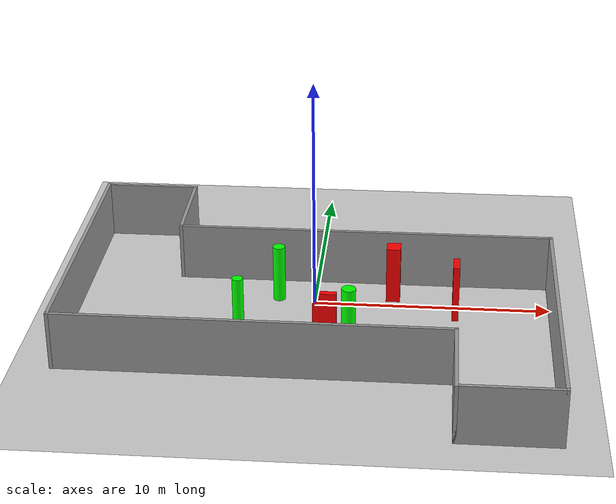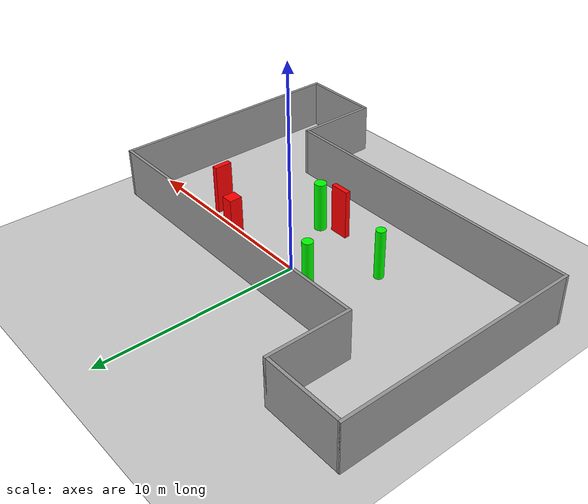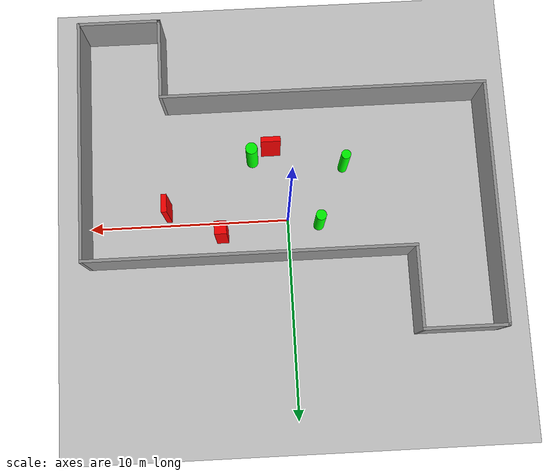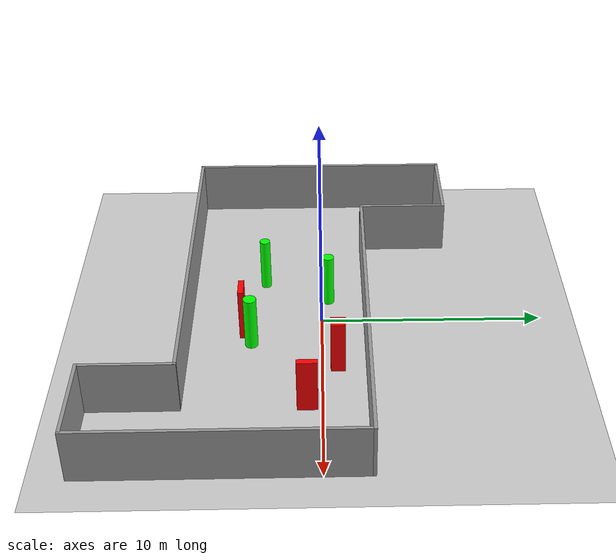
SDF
<sdf version="1.7">
 <world name="default">
  <light name="sun" type="directional">
   <pose>0 0 10 0 -0 0</pose>
   <diffuse>0.8 0.8 0.8 1</diffuse>
   <specular>0.2 0.2 0.2 1</specular>
   <attenuation>
    <range>1000</range>
    <constant>0.9</constant>
    <linear>0.01</linear>
    <quadratic>0.001</quadratic>
   </attenuation>
   <direction>-0.5 0.1 -0.9</direction>
   <spot><inner_angle>0</inner_angle><outer_angle>0</outer_angle><falloff>0</falloff></spot>
  </light>
  <model name="ground_plane">
   <static>1</static>
   <link name="link">
    <collision name="collision">
     <geometry><plane><normal>0 0 1</normal><size>100 100</size></plane></geometry>
     <surface>
      <contact><collide_bitmask>65535</collide_bitmask></contact>
      <friction><ode><mu>100</mu><mu2>50</mu2></ode></friction>
     </surface>
    </collision>
    <visual name="visual">
     <cast_shadows>0</cast_shadows>
     <geometry><plane><normal>0 0 1</normal><size>100 100</size></plane></geometry>
     <material>
      <script><uri>file://media/materials/scripts/gazebo.material</uri><name>Gazebo/Grey</name></script>
     </material>
    </visual>
   </link>
  </model>
  <gravity>0 0 -9.8</gravity>
  <magnetic_field>6e-06 2.3e-05 -4.2e-05</magnetic_field>
  <atmosphere type="adiabatic"/>
  <physics type="ode">
   <max_step_size>0.001</max_step_size>
   <real_time_factor>1</real_time_factor>
   <real_time_update_rate>1000</real_time_update_rate>
  </physics>
  <scene><ambient>0.4 0.4 0.4 1</ambient><background>0.7 0.7 0.7 1</background><shadows>1</shadows></scene>
  <spherical_coordinates>
   <surface_model>EARTH_WGS84</surface_model>
   <latitude_deg>0</latitude_deg>
   <longitude_deg>0</longitude_deg>
   <elevation>0</elevation>
   <heading_deg>0</heading_deg>
  </spherical_coordinates>
  <model name="my_base_walls">
   <link name="Wall_13">
    <collision name="Wall_13_Collision">
     <geometry><box><size>12.15 0.15 2.5</size></box></geometry>
     <pose>0 0 1.25 0 -0 0</pose>
    </collision>
    <visual name="Wall_13_Visual">
     <pose>0 0 1.25 0 -0 0</pose>
     <geometry><box><size>12.15 0.15 2.5</size></box></geometry>
     <material>
      <script><uri>file://media/materials/scripts/gazebo.material</uri><name>Gazebo/Grey</name></script>
      <ambient>1 1 1 1</ambient>
     </material>
     <meta><layer>0</layer></meta>
    </visual>
    <pose>10 -2 0 0 -0 1.5708</pose>
   </link>
   <link name="Wall_15">
    <collision name="Wall_15_Collision">
     <geometry><box><size>16.15 0.15 2.5</size></box></geometry>
     <pose>0 0 1.25 0 -0 0</pose>
    </collision>
    <visual name="Wall_15_Visual">
     <pose>0 0 1.25 0 -0 0</pose>
     <geometry><box><size>16.15 0.15 2.5</size></box></geometry>
     <material>
      <script><uri>file://media/materials/scripts/gazebo.material</uri><name>Gazebo/Grey</name></script>
      <ambient>1 1 1 1</ambient>
     </material>
     <meta><layer>0</layer></meta>
    </visual>
    <pose>2 4 0 0 -0 3.14159</pose>
   </link>
   <link name="Wall_17">
    <collision name="Wall_17_Collision">
     <geometry><box><size>4.15 0.15 2.5</size></box></geometry>
     <pose>0 0 1.25 0 -0 0</pose>
    </collision>
    <visual name="Wall_17_Visual">
     <pose>0 0 1.25 0 -0 0</pose>
     <geometry><box><size>4.15 0.15 2.5</size></box></geometry>
     <material>
      <script><uri>file://media/materials/scripts/gazebo.material</uri><name>Gazebo/Grey</name></script>
      <ambient>1 1 1 1</ambient>
     </material>
     <meta><layer>0</layer></meta>
    </visual>
    <pose>6 -6 0 0 -0 -1.5708</pose>
   </link>
   <link name="Wall_19">
    <collision name="Wall_19_Collision">
     <geometry><box><size>12.15 0.15 2.5</size></box></geometry>
     <pose>0 0 1.25 0 -0 0</pose>
    </collision>
    <visual name="Wall_19_Visual">
     <pose>0 0 1.25 0 -0 0</pose>
     <geometry><box><size>12.15 0.15 2.5</size></box></geometry>
     <material>
      <script><uri>file://media/materials/scripts/gazebo.material</uri><name>Gazebo/Grey</name></script>
      <ambient>1 1 1 1</ambient>
     </material>
     <meta><layer>0</layer></meta>
    </visual>
    <pose>-10 2 0 0 -0 1.5708</pose>
   </link>
   <link name="Wall_21">
    <collision name="Wall_21_Collision">
     <geometry><box><size>4.15 0.15 2.5</size></box></geometry>
     <pose>0 0 1.25 0 -0 0</pose>
    </collision>
    <visual name="Wall_21_Visual">
     <pose>0 0 1.25 0 -0 0</pose>
     <geometry><box><size>4.15 0.15 2.5</size></box></geometry>
     <material>
      <script><uri>file://media/materials/scripts/gazebo.material</uri><name>Gazebo/Grey</name></script>
      <ambient>1 1 1 1</ambient>
     </material>
     <meta><layer>0</layer></meta>
    </visual>
    <pose>-8 8 0 0 -0 0</pose>
   </link>
   <link name="Wall_23">
    <collision name="Wall_23_Collision">
     <geometry><box><size>4.15 0.15 2.5</size></box></geometry>
     <pose>0 0 1.25 0 -0 0</pose>
    </collision>
    <visual name="Wall_23_Visual">
     <pose>0 0 1.25 0 -0 0</pose>
     <geometry><box><size>4.15 0.15 2.5</size></box></geometry>
     <material>
      <script><uri>file://media/materials/scripts/gazebo.material</uri><name>Gazebo/Grey</name></script>
      <ambient>1 1 1 1</ambient>
     </material>
     <meta><layer>0</layer></meta>
    </visual>
    <pose>-6 6 0 0 -0 -1.5708</pose>
   </link>
   <link name="Wall_25">
    <collision name="Wall_25_Collision">
     <geometry><box><size>4.15 0.15 2.5</size></box></geometry>
     <pose>0 0 1.25 0 -0 0</pose>
    </collision>
    <visual name="Wall_25_Visual">
     <pose>0 0 1.25 0 -0 0</pose>
     <geometry><box><size>4.15 0.15 2.5</size></box></geometry>
     <material>
      <script><uri>file://media/materials/scripts/gazebo.material</uri><name>Gazebo/Grey</name></script>
      <ambient>1 1 1 1</ambient>
     </material>
     <meta><layer>0</layer></meta>
    </visual>
    <pose>8 -8 0 0 -0 0</pose>
   </link>
   <link name="Wall_9">
    <collision name="Wall_9_Collision">
     <geometry><box><size>16.15 0.15 2.5</size></box></geometry>
     <pose>0 0 1.25 0 -0 0</pose>
    </collision>
    <visual name="Wall_9_Visual">
     <pose>0 0 1.25 0 -0 0</pose>
     <geometry><box><size>16.15 0.15 2.5</size></box></geometry>
     <material>
      <script><uri>file://media/materials/scripts/gazebo.material</uri><name>Gazebo/Grey</name></script>
      <ambient>1 1 1 1</ambient>
     </material>
     <meta><layer>0</layer></meta>
    </visual>
    <pose>-2 -4 0 0 -0 3.14159</pose>
   </link>
   <static>1</static>
   <pose>-0 -2 0 0 -0 0</pose>
  </model>
  <model name="cylinder1">
   <static>1</static>
   <link name="link">
    <inertial>
     <mass>1</mass>
     <inertia><ixx>0.5</ixx><ixy>0</ixy><ixz>0</ixz><iyy>0.5</iyy><iyz>0</iyz><izz>1</izz></inertia>
    </inertial>
    <collision name="collision">
     <geometry><cylinder><radius>0.292848209097465</radius><length>2.5</length></cylinder></geometry>
    </collision>
    <visual name="visual">
     <geometry><cylinder><radius>0.292848209097465</radius><length>2.5</length></cylinder></geometry>
     <material>
      <ambient>0 1 0 1</ambient>
      <diffuse>0 1 0 1</diffuse>
      <specular>0.1 0.1 0.1 1</specular>
      <emissive>0 0 0 0</emissive>
     </material>
    </visual>
   </link>
   <pose>1.6541487175925997 -3.139686956755532 1.25 0 0 0</pose>
  </model>
  <model name="cylinder2">
   <static>1</static>
   <link name="link">
    <inertial>
     <mass>1</mass>
     <inertia><ixx>0.5</ixx><ixy>0</ixy><ixz>0</ixz><iyy>0.5</iyy><iyz>0</iyz><izz>1</izz></inertia>
    </inertial>
    <collision name="collision">
     <geometry><cylinder><radius>0.2596638344302101</radius><length>2.5</length></cylinder></geometry>
    </collision>
    <visual name="visual">
     <geometry><cylinder><radius>0.2596638344302101</radius><length>2.5</length></cylinder></geometry>
     <material>
      <ambient>0 1 0 1</ambient>
      <diffuse>0 1 0 1</diffuse>
      <specular>0.1 0.1 0.1 1</specular>
      <emissive>0 0 0 0</emissive>
     </material>
    </visual>
   </link>
   <pose>-1.5428956800470832 0.33057377656993037 1.25 0 0 0</pose>
  </model>
  <model name="cylinder3">
   <static>1</static>
   <link name="link">
    <inertial>
     <mass>1</mass>
     <inertia><ixx>0.5</ixx><ixy>0</ixy><ixz>0</ixz><iyy>0.5</iyy><iyz>0</iyz><izz>1</izz></inertia>
    </inertial>
    <collision name="collision">
     <geometry><cylinder><radius>0.23354446440240448</radius><length>2.5</length></cylinder></geometry>
    </collision>
    <visual name="visual">
     <geometry><cylinder><radius>0.23354446440240448</radius><length>2.5</length></cylinder></geometry>
     <material>
      <ambient>0 1 0 1</ambient>
      <diffuse>0 1 0 1</diffuse>
      <specular>0.1 0.1 0.1 1</specular>
      <emissive>0 0 0 0</emissive>
     </material>
    </visual>
   </link>
   <pose>-2.9310631582089863 -2.604375229536683 1.25 0 0 0</pose>
  </model>
  <model name="box1">
   <static>1</static>
   <link name="link">
    <inertial>
     <mass>1</mass>
     <inertia><ixx>0.083</ixx><ixy>0</ixy><ixz>0</ixz><iyy>0.083</iyy><iyz>0</iyz><izz>0.083</izz></inertia>
    </inertial>
    <collision name="collision">
     <geometry><box><size>0.9683873239176191 0.2530812612333843 2.5</size></box></geometry>
    </collision>
    <visual name="visual">
     <geometry><box><size>0.9683873239176191 0.2530812612333843 2.5</size></box></geometry>
     <material>
      <ambient>1 0 0 1</ambient>
      <diffuse>1 0 0 1</diffuse>
      <specular>0.1 0.1 0.1 1</specular>
      <emissive>0 0 0 0</emissive>
     </material>
    </visual>
    <sensor name="my_contact" type="contact">
     <contact><collision>box_collision</collision><topic>__default_topic__</topic></contact>
    </sensor>
   </link>
   <pose>0.7033374844472089 -3.5592156401822024 1.25 0 0 0</pose>
  </model>
  <model name="box2">
   <static>1</static>
   <link name="link">
    <inertial>
     <mass>1</mass>
     <inertia><ixx>0.083</ixx><ixy>0</ixy><ixz>0</ixz><iyy>0.083</iyy><iyz>0</iyz><izz>0.083</izz></inertia>
    </inertial>
    <collision name="collision">
     <geometry><box><size>0.5890454780923786 0.6417212019294702 2.5</size></box></geometry>
    </collision>
    <visual name="visual">
     <geometry><box><size>0.5890454780923786 0.6417212019294702 2.5</size></box></geometry>
     <material>
      <ambient>1 0 0 1</ambient>
      <diffuse>1 0 0 1</diffuse>
      <specular>0.1 0.1 0.1 1</specular>
      <emissive>0 0 0 0</emissive>
     </material>
    </visual>
    <sensor name="my_contact" type="contact">
     <contact><collision>box_collision</collision><topic>__default_topic__</topic></contact>
    </sensor>
   </link>
   <pose>3.3286570828744146 0.6958795905245854 1.25 0 0 0</pose>
  </model>
  <model name="box3">
   <static>1</static>
   <link name="link">
    <inertial>
     <mass>1</mass>
     <inertia><ixx>0.083</ixx><ixy>0</ixy><ixz>0</ixz><iyy>0.083</iyy><iyz>0</iyz><izz>0.083</izz></inertia>
    </inertial>
    <collision name="collision">
     <geometry><box><size>0.2707485547286476 0.8841502705578697 2.5</size></box></geometry>
    </collision>
    <visual name="visual">
     <geometry><box><size>0.2707485547286476 0.8841502705578697 2.5</size></box></geometry>
     <material>
      <ambient>1 0 0 1</ambient>
      <diffuse>1 0 0 1</diffuse>
      <specular>0.1 0.1 0.1 1</specular>
      <emissive>0 0 0 0</emissive>
     </material>
    </visual>
    <sensor name="my_contact" type="contact">
     <contact><collision>box_collision</collision><topic>__default_topic__</topic></contact>
    </sensor>
   </link>
   <pose>5.99307956815681 -0.6342037503598403 1.25 0 0 0</pose>
  </model>
 </world>
</sdf>
